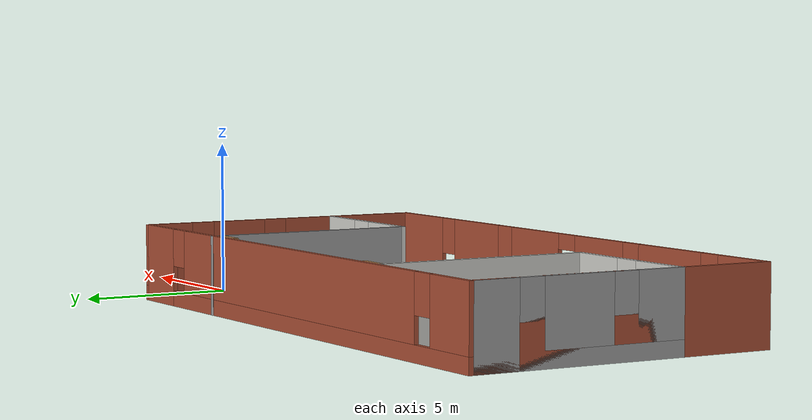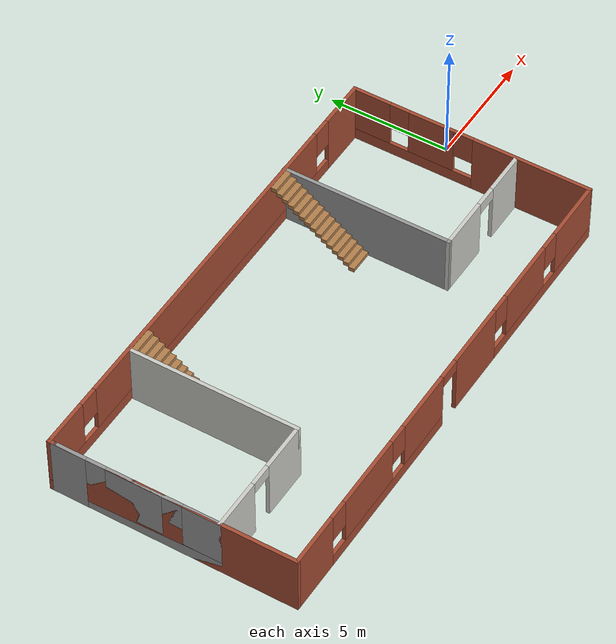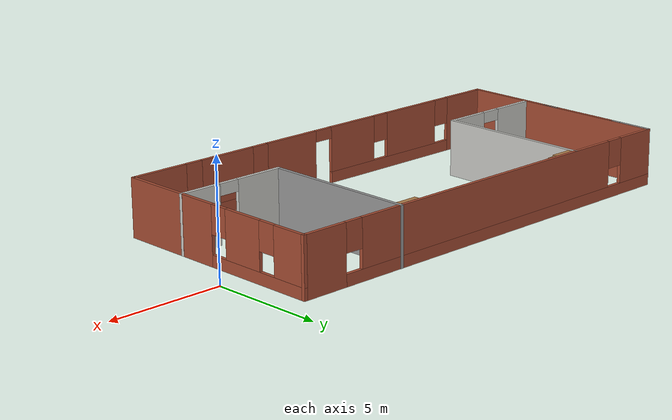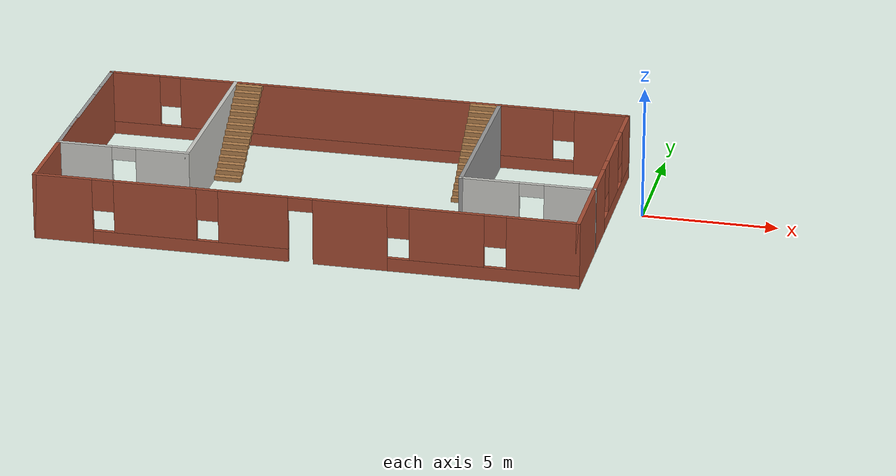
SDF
<?xml version='1.0'?>
<sdf version='1.6'>
  <model name='building01'>
    <pose frame=''>-11.0893 -1.63363 0 0 -0 0</pose>
    <link name='Stairs_0'>
      <visual name='Stairs_0_Visual_0'>
        <pose frame=''>-4.49569 1.4753 0.083 0 -0 -3.14159</pose>
        <geometry>
          <box>
            <size>1 0.233333 0.166</size>
          </box>
        </geometry>
        <material>
          <script>
            <uri>file://media/materials/scripts/gazebo.material</uri>
            <name>Gazebo/Wood</name>
          </script>
          <ambient>0.760784 0.662745 0.627451 1</ambient>
        </material>
        <meta>
          <layer>0</layer>
        </meta>
      </visual>
      <collision name='Stairs_0_Collision_0'>
        <geometry>
          <box>
            <size>1 0.233333 0.166</size>
          </box>
        </geometry>
        <pose frame=''>-4.49569 1.4753 0.083 0 -0 -3.14159</pose>
      </collision>
      <visual name='Stairs_0_Visual_1'>
        <pose frame=''>-4.49569 1.70863 0.249 0 -0 -3.14159</pose>
        <geometry>
          <box>
            <size>1 0.233333 0.166</size>
          </box>
        </geometry>
        <material>
          <script>
            <uri>file://media/materials/scripts/gazebo.material</uri>
            <name>Gazebo/Wood</name>
          </script>
          <ambient>0.760784 0.662745 0.627451 1</ambient>
        </material>
        <meta>
          <layer>0</layer>
        </meta>
      </visual>
      <collision name='Stairs_0_Collision_1'>
        <geometry>
          <box>
            <size>1 0.233333 0.166</size>
          </box>
        </geometry>
        <pose frame=''>-4.49569 1.70863 0.249 0 -0 -3.14159</pose>
      </collision>
      <visual name='Stairs_0_Visual_2'>
        <pose frame=''>-4.49569 1.94196 0.415 0 -0 -3.14159</pose>
        <geometry>
          <box>
            <size>1 0.233333 0.166</size>
          </box>
        </geometry>
        <material>
          <script>
            <uri>file://media/materials/scripts/gazebo.material</uri>
            <name>Gazebo/Wood</name>
          </script>
          <ambient>0.760784 0.662745 0.627451 1</ambient>
        </material>
        <meta>
          <layer>0</layer>
        </meta>
      </visual>
      <collision name='Stairs_0_Collision_2'>
        <geometry>
          <box>
            <size>1 0.233333 0.166</size>
          </box>
        </geometry>
        <pose frame=''>-4.49569 1.94196 0.415 0 -0 -3.14159</pose>
      </collision>
      <visual name='Stairs_0_Visual_3'>
        <pose frame=''>-4.49569 2.1753 0.581 0 -0 -3.14159</pose>
        <geometry>
          <box>
            <size>1 0.233333 0.166</size>
          </box>
        </geometry>
        <material>
          <script>
            <uri>file://media/materials/scripts/gazebo.material</uri>
            <name>Gazebo/Wood</name>
          </script>
          <ambient>0.760784 0.662745 0.627451 1</ambient>
        </material>
        <meta>
          <layer>0</layer>
        </meta>
      </visual>
      <collision name='Stairs_0_Collision_3'>
        <geometry>
          <box>
            <size>1 0.233333 0.166</size>
          </box>
        </geometry>
        <pose frame=''>-4.49569 2.1753 0.581 0 -0 -3.14159</pose>
      </collision>
      <visual name='Stairs_0_Visual_4'>
        <pose frame=''>-4.49569 2.40863 0.747 0 -0 -3.14159</pose>
        <geometry>
          <box>
            <size>1 0.233333 0.166</size>
          </box>
        </geometry>
        <material>
          <script>
            <uri>file://media/materials/scripts/gazebo.material</uri>
            <name>Gazebo/Wood</name>
          </script>
          <ambient>0.760784 0.662745 0.627451 1</ambient>
        </material>
        <meta>
          <layer>0</layer>
        </meta>
      </visual>
      <collision name='Stairs_0_Collision_4'>
        <geometry>
          <box>
            <size>1 0.233333 0.166</size>
          </box>
        </geometry>
        <pose frame=''>-4.49569 2.40863 0.747 0 -0 -3.14159</pose>
      </collision>
      <visual name='Stairs_0_Visual_5'>
        <pose frame=''>-4.49569 2.64196 0.913 0 -0 -3.14159</pose>
        <geometry>
          <box>
            <size>1 0.233333 0.166</size>
          </box>
        </geometry>
        <material>
          <script>
            <uri>file://media/materials/scripts/gazebo.material</uri>
            <name>Gazebo/Wood</name>
          </script>
          <ambient>0.760784 0.662745 0.627451 1</ambient>
        </material>
        <meta>
          <layer>0</layer>
        </meta>
      </visual>
      <collision name='Stairs_0_Collision_5'>
        <geometry>
          <box>
            <size>1 0.233333 0.166</size>
          </box>
        </geometry>
        <pose frame=''>-4.49569 2.64196 0.913 0 -0 -3.14159</pose>
      </collision>
      <visual name='Stairs_0_Visual_6'>
        <pose frame=''>-4.49569 2.87529 1.079 0 -0 -3.14159</pose>
        <geometry>
          <box>
            <size>1 0.233333 0.166</size>
          </box>
        </geometry>
        <material>
          <script>
            <uri>file://media/materials/scripts/gazebo.material</uri>
            <name>Gazebo/Wood</name>
          </script>
          <ambient>0.760784 0.662745 0.627451 1</ambient>
        </material>
        <meta>
          <layer>0</layer>
        </meta>
      </visual>
      <collision name='Stairs_0_Collision_6'>
        <geometry>
          <box>
            <size>1 0.233333 0.166</size>
          </box>
        </geometry>
        <pose frame=''>-4.49569 2.87529 1.079 0 -0 -3.14159</pose>
      </collision>
      <visual name='Stairs_0_Visual_7'>
        <pose frame=''>-4.49569 3.10863 1.245 0 -0 -3.14159</pose>
        <geometry>
          <box>
            <size>1 0.233333 0.166</size>
          </box>
        </geometry>
        <material>
          <script>
            <uri>file://media/materials/scripts/gazebo.material</uri>
            <name>Gazebo/Wood</name>
          </script>
          <ambient>0.760784 0.662745 0.627451 1</ambient>
        </material>
        <meta>
          <layer>0</layer>
        </meta>
      </visual>
      <collision name='Stairs_0_Collision_7'>
        <geometry>
          <box>
            <size>1 0.233333 0.166</size>
          </box>
        </geometry>
        <pose frame=''>-4.49569 3.10863 1.245 0 -0 -3.14159</pose>
      </collision>
      <visual name='Stairs_0_Visual_8'>
        <pose frame=''>-4.49569 3.34196 1.411 0 -0 -3.14159</pose>
        <geometry>
          <box>
            <size>1 0.233333 0.166</size>
          </box>
        </geometry>
        <material>
          <script>
            <uri>file://media/materials/scripts/gazebo.material</uri>
            <name>Gazebo/Wood</name>
          </script>
          <ambient>0.760784 0.662745 0.627451 1</ambient>
        </material>
        <meta>
          <layer>0</layer>
        </meta>
      </visual>
      <collision name='Stairs_0_Collision_8'>
        <geometry>
          <box>
            <size>1 0.233333 0.166</size>
          </box>
        </geometry>
        <pose frame=''>-4.49569 3.34196 1.411 0 -0 -3.14159</pose>
      </collision>
      <visual name='Stairs_0_Visual_9'>
        <pose frame=''>-4.49569 3.5753 1.577 0 -0 -3.14159</pose>
        <geometry>
          <box>
            <size>1 0.233333 0.166</size>
          </box>
        </geometry>
        <material>
          <script>
            <uri>file://media/materials/scripts/gazebo.material</uri>
            <name>Gazebo/Wood</name>
          </script>
          <ambient>0.760784 0.662745 0.627451 1</ambient>
        </material>
        <meta>
          <layer>0</layer>
        </meta>
      </visual>
      <collision name='Stairs_0_Collision_9'>
        <geometry>
          <box>
            <size>1 0.233333 0.166</size>
          </box>
        </geometry>
        <pose frame=''>-4.49569 3.5753 1.577 0 -0 -3.14159</pose>
      </collision>
      <visual name='Stairs_0_Visual_10'>
        <pose frame=''>-4.49569 3.80863 1.743 0 -0 -3.14159</pose>
        <geometry>
          <box>
            <size>1 0.233333 0.166</size>
          </box>
        </geometry>
        <material>
          <script>
            <uri>file://media/materials/scripts/gazebo.material</uri>
            <name>Gazebo/Wood</name>
          </script>
          <ambient>0.760784 0.662745 0.627451 1</ambient>
        </material>
        <meta>
          <layer>0</layer>
        </meta>
      </visual>
      <collision name='Stairs_0_Collision_10'>
        <geometry>
          <box>
            <size>1 0.233333 0.166</size>
          </box>
        </geometry>
        <pose frame=''>-4.49569 3.80863 1.743 0 -0 -3.14159</pose>
      </collision>
      <visual name='Stairs_0_Visual_11'>
        <pose frame=''>-4.49569 4.04196 1.909 0 -0 -3.14159</pose>
        <geometry>
          <box>
            <size>1 0.233333 0.166</size>
          </box>
        </geometry>
        <material>
          <script>
            <uri>file://media/materials/scripts/gazebo.material</uri>
            <name>Gazebo/Wood</name>
          </script>
          <ambient>0.760784 0.662745 0.627451 1</ambient>
        </material>
        <meta>
          <layer>0</layer>
        </meta>
      </visual>
      <collision name='Stairs_0_Collision_11'>
        <geometry>
          <box>
            <size>1 0.233333 0.166</size>
          </box>
        </geometry>
        <pose frame=''>-4.49569 4.04196 1.909 0 -0 -3.14159</pose>
      </collision>
      <visual name='Stairs_0_Visual_12'>
        <pose frame=''>-4.49569 4.27529 2.075 0 -0 -3.14159</pose>
        <geometry>
          <box>
            <size>1 0.233333 0.166</size>
          </box>
        </geometry>
        <material>
          <script>
            <uri>file://media/materials/scripts/gazebo.material</uri>
            <name>Gazebo/Wood</name>
          </script>
          <ambient>0.760784 0.662745 0.627451 1</ambient>
        </material>
        <meta>
          <layer>0</layer>
        </meta>
      </visual>
      <collision name='Stairs_0_Collision_12'>
        <geometry>
          <box>
            <size>1 0.233333 0.166</size>
          </box>
        </geometry>
        <pose frame=''>-4.49569 4.27529 2.075 0 -0 -3.14159</pose>
      </collision>
      <visual name='Stairs_0_Visual_13'>
        <pose frame=''>-4.49569 4.50863 2.241 0 -0 -3.14159</pose>
        <geometry>
          <box>
            <size>1 0.233333 0.166</size>
          </box>
        </geometry>
        <material>
          <script>
            <uri>file://media/materials/scripts/gazebo.material</uri>
            <name>Gazebo/Wood</name>
          </script>
          <ambient>0.760784 0.662745 0.627451 1</ambient>
        </material>
        <meta>
          <layer>0</layer>
        </meta>
      </visual>
      <collision name='Stairs_0_Collision_13'>
        <geometry>
          <box>
            <size>1 0.233333 0.166</size>
          </box>
        </geometry>
        <pose frame=''>-4.49569 4.50863 2.241 0 -0 -3.14159</pose>
      </collision>
      <visual name='Stairs_0_Visual_14'>
        <pose frame=''>-4.49569 4.74196 2.407 0 -0 -3.14159</pose>
        <geometry>
          <box>
            <size>1 0.233333 0.166</size>
          </box>
        </geometry>
        <material>
          <script>
            <uri>file://media/materials/scripts/gazebo.material</uri>
            <name>Gazebo/Wood</name>
          </script>
          <ambient>0.760784 0.662745 0.627451 1</ambient>
        </material>
        <meta>
          <layer>0</layer>
        </meta>
      </visual>
      <collision name='Stairs_0_Collision_14'>
        <geometry>
          <box>
            <size>1 0.233333 0.166</size>
          </box>
        </geometry>
        <pose frame=''>-4.49569 4.74196 2.407 0 -0 -3.14159</pose>
      </collision>
    </link>
    <link name='Stairs_1'>
      <visual name='Stairs_1_Visual_0'>
        <pose frame=''>4.50728 1.45825 0.083333 0 -0 -3.14159</pose>
        <geometry>
          <box>
            <size>1 0.233333 0.166667</size>
          </box>
        </geometry>
        <material>
          <script>
            <uri>file://media/materials/scripts/gazebo.material</uri>
            <name>Gazebo/Wood</name>
          </script>
          <ambient>1 1 1 1</ambient>
        </material>
        <meta>
          <layer>0</layer>
        </meta>
      </visual>
      <collision name='Stairs_1_Collision_0'>
        <geometry>
          <box>
            <size>1 0.233333 0.166667</size>
          </box>
        </geometry>
        <pose frame=''>4.50728 1.45825 0.083333 0 -0 -3.14159</pose>
      </collision>
      <visual name='Stairs_1_Visual_1'>
        <pose frame=''>4.50728 1.69158 0.25 0 -0 -3.14159</pose>
        <geometry>
          <box>
            <size>1 0.233333 0.166667</size>
          </box>
        </geometry>
        <material>
          <script>
            <uri>file://media/materials/scripts/gazebo.material</uri>
            <name>Gazebo/Wood</name>
          </script>
          <ambient>1 1 1 1</ambient>
        </material>
        <meta>
          <layer>0</layer>
        </meta>
      </visual>
      <collision name='Stairs_1_Collision_1'>
        <geometry>
          <box>
            <size>1 0.233333 0.166667</size>
          </box>
        </geometry>
        <pose frame=''>4.50728 1.69158 0.25 0 -0 -3.14159</pose>
      </collision>
      <visual name='Stairs_1_Visual_2'>
        <pose frame=''>4.50728 1.92491 0.416667 0 -0 -3.14159</pose>
        <geometry>
          <box>
            <size>1 0.233333 0.166667</size>
          </box>
        </geometry>
        <material>
          <script>
            <uri>file://media/materials/scripts/gazebo.material</uri>
            <name>Gazebo/Wood</name>
          </script>
          <ambient>1 1 1 1</ambient>
        </material>
        <meta>
          <layer>0</layer>
        </meta>
      </visual>
      <collision name='Stairs_1_Collision_2'>
        <geometry>
          <box>
            <size>1 0.233333 0.166667</size>
          </box>
        </geometry>
        <pose frame=''>4.50728 1.92491 0.416667 0 -0 -3.14159</pose>
      </collision>
      <visual name='Stairs_1_Visual_3'>
        <pose frame=''>4.50728 2.15825 0.583333 0 -0 -3.14159</pose>
        <geometry>
          <box>
            <size>1 0.233333 0.166667</size>
          </box>
        </geometry>
        <material>
          <script>
            <uri>file://media/materials/scripts/gazebo.material</uri>
            <name>Gazebo/Wood</name>
          </script>
          <ambient>1 1 1 1</ambient>
        </material>
        <meta>
          <layer>0</layer>
        </meta>
      </visual>
      <collision name='Stairs_1_Collision_3'>
        <geometry>
          <box>
            <size>1 0.233333 0.166667</size>
          </box>
        </geometry>
        <pose frame=''>4.50728 2.15825 0.583333 0 -0 -3.14159</pose>
      </collision>
      <visual name='Stairs_1_Visual_4'>
        <pose frame=''>4.50728 2.39158 0.75 0 -0 -3.14159</pose>
        <geometry>
          <box>
            <size>1 0.233333 0.166667</size>
          </box>
        </geometry>
        <material>
          <script>
            <uri>file://media/materials/scripts/gazebo.material</uri>
            <name>Gazebo/Wood</name>
          </script>
          <ambient>1 1 1 1</ambient>
        </material>
        <meta>
          <layer>0</layer>
        </meta>
      </visual>
      <collision name='Stairs_1_Collision_4'>
        <geometry>
          <box>
            <size>1 0.233333 0.166667</size>
          </box>
        </geometry>
        <pose frame=''>4.50728 2.39158 0.75 0 -0 -3.14159</pose>
      </collision>
      <visual name='Stairs_1_Visual_5'>
        <pose frame=''>4.50728 2.62491 0.916667 0 -0 -3.14159</pose>
        <geometry>
          <box>
            <size>1 0.233333 0.166667</size>
          </box>
        </geometry>
        <material>
          <script>
            <uri>file://media/materials/scripts/gazebo.material</uri>
            <name>Gazebo/Wood</name>
          </script>
          <ambient>1 1 1 1</ambient>
        </material>
        <meta>
          <layer>0</layer>
        </meta>
      </visual>
      <collision name='Stairs_1_Collision_5'>
        <geometry>
          <box>
            <size>1 0.233333 0.166667</size>
          </box>
        </geometry>
        <pose frame=''>4.50728 2.62491 0.916667 0 -0 -3.14159</pose>
      </collision>
      <visual name='Stairs_1_Visual_6'>
        <pose frame=''>4.50728 2.85825 1.08333 0 -0 -3.14159</pose>
        <geometry>
          <box>
            <size>1 0.233333 0.166667</size>
          </box>
        </geometry>
        <material>
          <script>
            <uri>file://media/materials/scripts/gazebo.material</uri>
            <name>Gazebo/Wood</name>
          </script>
          <ambient>1 1 1 1</ambient>
        </material>
        <meta>
          <layer>0</layer>
        </meta>
      </visual>
      <collision name='Stairs_1_Collision_6'>
        <geometry>
          <box>
            <size>1 0.233333 0.166667</size>
          </box>
        </geometry>
        <pose frame=''>4.50728 2.85825 1.08333 0 -0 -3.14159</pose>
      </collision>
      <visual name='Stairs_1_Visual_7'>
        <pose frame=''>4.50728 3.09158 1.25 0 -0 -3.14159</pose>
        <geometry>
          <box>
            <size>1 0.233333 0.166667</size>
          </box>
        </geometry>
        <material>
          <script>
            <uri>file://media/materials/scripts/gazebo.material</uri>
            <name>Gazebo/Wood</name>
          </script>
          <ambient>1 1 1 1</ambient>
        </material>
        <meta>
          <layer>0</layer>
        </meta>
      </visual>
      <collision name='Stairs_1_Collision_7'>
        <geometry>
          <box>
            <size>1 0.233333 0.166667</size>
          </box>
        </geometry>
        <pose frame=''>4.50728 3.09158 1.25 0 -0 -3.14159</pose>
      </collision>
      <visual name='Stairs_1_Visual_8'>
        <pose frame=''>4.50728 3.32491 1.41667 0 -0 -3.14159</pose>
        <geometry>
          <box>
            <size>1 0.233333 0.166667</size>
          </box>
        </geometry>
        <material>
          <script>
            <uri>file://media/materials/scripts/gazebo.material</uri>
            <name>Gazebo/Wood</name>
          </script>
          <ambient>1 1 1 1</ambient>
        </material>
        <meta>
          <layer>0</layer>
        </meta>
      </visual>
      <collision name='Stairs_1_Collision_8'>
        <geometry>
          <box>
            <size>1 0.233333 0.166667</size>
          </box>
        </geometry>
        <pose frame=''>4.50728 3.32491 1.41667 0 -0 -3.14159</pose>
      </collision>
      <visual name='Stairs_1_Visual_9'>
        <pose frame=''>4.50728 3.55825 1.58333 0 -0 -3.14159</pose>
        <geometry>
          <box>
            <size>1 0.233333 0.166667</size>
          </box>
        </geometry>
        <material>
          <script>
            <uri>file://media/materials/scripts/gazebo.material</uri>
            <name>Gazebo/Wood</name>
          </script>
          <ambient>1 1 1 1</ambient>
        </material>
        <meta>
          <layer>0</layer>
        </meta>
      </visual>
      <collision name='Stairs_1_Collision_9'>
        <geometry>
          <box>
            <size>1 0.233333 0.166667</size>
          </box>
        </geometry>
        <pose frame=''>4.50728 3.55825 1.58333 0 -0 -3.14159</pose>
      </collision>
      <visual name='Stairs_1_Visual_10'>
        <pose frame=''>4.50728 3.79158 1.75 0 -0 -3.14159</pose>
        <geometry>
          <box>
            <size>1 0.233333 0.166667</size>
          </box>
        </geometry>
        <material>
          <script>
            <uri>file://media/materials/scripts/gazebo.material</uri>
            <name>Gazebo/Wood</name>
          </script>
          <ambient>1 1 1 1</ambient>
        </material>
        <meta>
          <layer>0</layer>
        </meta>
      </visual>
      <collision name='Stairs_1_Collision_10'>
        <geometry>
          <box>
            <size>1 0.233333 0.166667</size>
          </box>
        </geometry>
        <pose frame=''>4.50728 3.79158 1.75 0 -0 -3.14159</pose>
      </collision>
      <visual name='Stairs_1_Visual_11'>
        <pose frame=''>4.50728 4.02491 1.91667 0 -0 -3.14159</pose>
        <geometry>
          <box>
            <size>1 0.233333 0.166667</size>
          </box>
        </geometry>
        <material>
          <script>
            <uri>file://media/materials/scripts/gazebo.material</uri>
            <name>Gazebo/Wood</name>
          </script>
          <ambient>1 1 1 1</ambient>
        </material>
        <meta>
          <layer>0</layer>
        </meta>
      </visual>
      <collision name='Stairs_1_Collision_11'>
        <geometry>
          <box>
            <size>1 0.233333 0.166667</size>
          </box>
        </geometry>
        <pose frame=''>4.50728 4.02491 1.91667 0 -0 -3.14159</pose>
      </collision>
      <visual name='Stairs_1_Visual_12'>
        <pose frame=''>4.50728 4.25825 2.08333 0 -0 -3.14159</pose>
        <geometry>
          <box>
            <size>1 0.233333 0.166667</size>
          </box>
        </geometry>
        <material>
          <script>
            <uri>file://media/materials/scripts/gazebo.material</uri>
            <name>Gazebo/Wood</name>
          </script>
          <ambient>1 1 1 1</ambient>
        </material>
        <meta>
          <layer>0</layer>
        </meta>
      </visual>
      <collision name='Stairs_1_Collision_12'>
        <geometry>
          <box>
            <size>1 0.233333 0.166667</size>
          </box>
        </geometry>
        <pose frame=''>4.50728 4.25825 2.08333 0 -0 -3.14159</pose>
      </collision>
      <visual name='Stairs_1_Visual_13'>
        <pose frame=''>4.50728 4.49158 2.25 0 -0 -3.14159</pose>
        <geometry>
          <box>
            <size>1 0.233333 0.166667</size>
          </box>
        </geometry>
        <material>
          <script>
            <uri>file://media/materials/scripts/gazebo.material</uri>
            <name>Gazebo/Wood</name>
          </script>
          <ambient>1 1 1 1</ambient>
        </material>
        <meta>
          <layer>0</layer>
        </meta>
      </visual>
      <collision name='Stairs_1_Collision_13'>
        <geometry>
          <box>
            <size>1 0.233333 0.166667</size>
          </box>
        </geometry>
        <pose frame=''>4.50728 4.49158 2.25 0 -0 -3.14159</pose>
      </collision>
      <visual name='Stairs_1_Visual_14'>
        <pose frame=''>4.50728 4.72491 2.41667 0 -0 -3.14159</pose>
        <geometry>
          <box>
            <size>1 0.233333 0.166667</size>
          </box>
        </geometry>
        <material>
          <script>
            <uri>file://media/materials/scripts/gazebo.material</uri>
            <name>Gazebo/Wood</name>
          </script>
          <ambient>1 1 1 1</ambient>
        </material>
        <meta>
          <layer>0</layer>
        </meta>
      </visual>
      <collision name='Stairs_1_Collision_14'>
        <geometry>
          <box>
            <size>1 0.233333 0.166667</size>
          </box>
        </geometry>
        <pose frame=''>4.50728 4.72491 2.41667 0 -0 -3.14159</pose>
      </collision>
    </link>
    <link name='Wall_16'>
      <pose frame=''>7.50105 -1.91931 0 0 -0 3.14159</pose>
      <visual name='Wall_16_Visual_0'>
        <pose frame=''>-1.55703 0 1.25 0 -0 0</pose>
        <geometry>
          <box>
            <size>1.88594 0.15 2.5</size>
          </box>
        </geometry>
        <material>
          <script>
            <uri>file://media/materials/scripts/gazebo.material</uri>
            <name>Gazebo/CeilingTiled</name>
          </script>
          <ambient>1 1 1 1</ambient>
        </material>
        <meta>
          <layer>0</layer>
        </meta>
      </visual>
      <collision name='Wall_16_Collision_0'>
        <geometry>
          <box>
            <size>1.88594 0.15 2.5</size>
          </box>
        </geometry>
        <pose frame=''>-1.55703 0 1.25 0 -0 0</pose>
      </collision>
      <visual name='Wall_16_Visual_1'>
        <pose frame=''>1.39297 0 1.25 0 -0 0</pose>
        <geometry>
          <box>
            <size>2.21406 0.15 2.5</size>
          </box>
        </geometry>
        <material>
          <script>
            <uri>file://media/materials/scripts/gazebo.material</uri>
            <name>Gazebo/CeilingTiled</name>
          </script>
          <ambient>1 1 1 1</ambient>
        </material>
        <meta>
          <layer>0</layer>
        </meta>
      </visual>
      <collision name='Wall_16_Collision_1'>
        <geometry>
          <box>
            <size>2.21406 0.15 2.5</size>
          </box>
        </geometry>
        <pose frame=''>1.39297 0 1.25 0 -0 0</pose>
      </collision>
      <visual name='Wall_16_Visual_2'>
        <pose frame=''>-0.164063 0 2.25 0 -0 0</pose>
        <geometry>
          <box>
            <size>0.9 0.15 0.5</size>
          </box>
        </geometry>
        <material>
          <script>
            <uri>file://media/materials/scripts/gazebo.material</uri>
            <name>Gazebo/CeilingTiled</name>
          </script>
          <ambient>1 1 1 1</ambient>
        </material>
        <meta>
          <layer>0</layer>
        </meta>
      </visual>
      <collision name='Wall_16_Collision_2'>
        <geometry>
          <box>
            <size>0.9 0.15 0.5</size>
          </box>
        </geometry>
        <pose frame=''>-0.164063 0 2.25 0 -0 0</pose>
      </collision>
    </link>
    <link name='Wall_17'>
      <collision name='Wall_17_Collision'>
        <geometry>
          <box>
            <size>7 0.15 2.5</size>
          </box>
        </geometry>
        <pose frame=''>0 0 1.25 0 -0 0</pose>
      </collision>
      <visual name='Wall_17_Visual'>
        <pose frame=''>0 0 1.25 0 -0 0</pose>
        <geometry>
          <box>
            <size>7 0.15 2.5</size>
          </box>
        </geometry>
        <material>
          <script>
            <uri>file://media/materials/scripts/gazebo.material</uri>
            <name>Gazebo/Grey</name>
          </script>
          <ambient>1 1 1 1</ambient>
        </material>
        <meta>
          <layer>0</layer>
        </meta>
      </visual>
      <pose frame=''>5.07605 1.50569 0 0 -0 1.5708</pose>
    </link>
    <link name='Wall_3'>
      <collision name='Wall_3_Collision'>
        <geometry>
          <box>
            <size>10 0.15 2.5</size>
          </box>
        </geometry>
        <pose frame=''>0 0 1.25 0 -0 0</pose>
      </collision>
      <visual name='Wall_3_Visual'>
        <pose frame=''>0 0 1.25 0 -0 0</pose>
        <geometry>
          <box>
            <size>10 0.15 2.5</size>
          </box>
        </geometry>
        <material>
          <script>
            <uri>file://media/materials/scripts/gazebo.material</uri>
            <name>Gazebo/Bricks</name>
          </script>
          <ambient>1 1 1 1</ambient>
        </material>
        <meta>
          <layer>0</layer>
        </meta>
      </visual>
      <pose frame=''>-9.92605 -0.005693 0 0 0 -1.5708</pose>
    </link>
    <link name='Wall_4'>
      <pose frame=''>-0.001048 -4.93069 0 0 -0 0</pose>
      <visual name='Wall_4_Visual_0'>
        <pose frame=''>-8.8894 0 1.25 0 -0 0</pose>
        <geometry>
          <box>
            <size>2.22121 0.15 2.5</size>
          </box>
        </geometry>
        <material>
          <script>
            <uri>file://media/materials/scripts/gazebo.material</uri>
            <name>Gazebo/Bricks</name>
          </script>
          <ambient>1 1 1 1</ambient>
        </material>
        <meta>
          <layer>0</layer>
        </meta>
      </visual>
      <collision name='Wall_4_Collision_0'>
        <geometry>
          <box>
            <size>2.22121 0.15 2.5</size>
          </box>
        </geometry>
        <pose frame=''>-8.8894 0 1.25 0 -0 0</pose>
      </collision>
      <visual name='Wall_4_Visual_1'>
        <pose frame=''>1.70737 0 1.25 0 -0 0</pose>
        <geometry>
          <box>
            <size>2.7101 0.15 2.5</size>
          </box>
        </geometry>
        <material>
          <script>
            <uri>file://media/materials/scripts/gazebo.material</uri>
            <name>Gazebo/Bricks</name>
          </script>
          <ambient>1 1 1 1</ambient>
        </material>
        <meta>
          <layer>0</layer>
        </meta>
      </visual>
      <collision name='Wall_4_Collision_1'>
        <geometry>
          <box>
            <size>2.7101 0.15 2.5</size>
          </box>
        </geometry>
        <pose frame=''>1.70737 0 1.25 0 -0 0</pose>
      </collision>
      <visual name='Wall_4_Visual_2'>
        <pose frame=''>-4.16324 0 0.25 0 -0 0</pose>
        <geometry>
          <box>
            <size>7.23111 0.15 0.5</size>
          </box>
        </geometry>
        <material>
          <script>
            <uri>file://media/materials/scripts/gazebo.material</uri>
            <name>Gazebo/Bricks</name>
          </script>
          <ambient>1 1 1 1</ambient>
        </material>
        <meta>
          <layer>0</layer>
        </meta>
      </visual>
      <collision name='Wall_4_Collision_2'>
        <geometry>
          <box>
            <size>7.23111 0.15 0.5</size>
          </box>
        </geometry>
        <pose frame=''>-4.16324 0 0.25 0 -0 0</pose>
      </collision>
      <visual name='Wall_4_Visual_3'>
        <pose frame=''>6.53121 0 0.25 0 -0 0</pose>
        <geometry>
          <box>
            <size>6.93758 0.15 0.5</size>
          </box>
        </geometry>
        <material>
          <script>
            <uri>file://media/materials/scripts/gazebo.material</uri>
            <name>Gazebo/Bricks</name>
          </script>
          <ambient>1 1 1 1</ambient>
        </material>
        <meta>
          <layer>0</layer>
        </meta>
      </visual>
      <collision name='Wall_4_Collision_3'>
        <geometry>
          <box>
            <size>6.93758 0.15 0.5</size>
          </box>
        </geometry>
        <pose frame=''>6.53121 0 0.25 0 -0 0</pose>
      </collision>
      <visual name='Wall_4_Visual_4'>
        <pose frame=''>-5.44789 0 1.5 0 -0 0</pose>
        <geometry>
          <box>
            <size>3.06181 0.15 2</size>
          </box>
        </geometry>
        <material>
          <script>
            <uri>file://media/materials/scripts/gazebo.material</uri>
            <name>Gazebo/Bricks</name>
          </script>
          <ambient>1 1 1 1</ambient>
        </material>
        <meta>
          <layer>0</layer>
        </meta>
      </visual>
      <collision name='Wall_4_Collision_4'>
        <geometry>
          <box>
            <size>3.06181 0.15 2</size>
          </box>
        </geometry>
        <pose frame=''>-5.44789 0 1.5 0 -0 0</pose>
      </collision>
      <visual name='Wall_4_Visual_5'>
        <pose frame=''>-1.83233 0 1.5 0 -0 0</pose>
        <geometry>
          <box>
            <size>2.56931 0.15 2</size>
          </box>
        </geometry>
        <material>
          <script>
            <uri>file://media/materials/scripts/gazebo.material</uri>
            <name>Gazebo/Bricks</name>
          </script>
          <ambient>1 1 1 1</ambient>
        </material>
        <meta>
          <layer>0</layer>
        </meta>
      </visual>
      <collision name='Wall_4_Collision_5'>
        <geometry>
          <box>
            <size>2.56931 0.15 2</size>
          </box>
        </geometry>
        <pose frame=''>-1.83233 0 1.5 0 -0 0</pose>
      </collision>
      <visual name='Wall_4_Visual_6'>
        <pose frame=''>-1.83233 0 1.5 0 -0 0</pose>
        <geometry>
          <box>
            <size>2.56931 0.15 2</size>
          </box>
        </geometry>
        <material>
          <script>
            <uri>file://media/materials/scripts/gazebo.material</uri>
            <name>Gazebo/Bricks</name>
          </script>
          <ambient>1 1 1 1</ambient>
        </material>
        <meta>
          <layer>0</layer>
        </meta>
      </visual>
      <collision name='Wall_4_Collision_6'>
        <geometry>
          <box>
            <size>2.56931 0.15 2</size>
          </box>
        </geometry>
        <pose frame=''>-1.83233 0 1.5 0 -0 0</pose>
      </collision>
      <visual name='Wall_4_Visual_7'>
        <pose frame=''>5.2123 0 1.5 0 -0 0</pose>
        <geometry>
          <box>
            <size>2.69976 0.15 2</size>
          </box>
        </geometry>
        <material>
          <script>
            <uri>file://media/materials/scripts/gazebo.material</uri>
            <name>Gazebo/Bricks</name>
          </script>
          <ambient>1 1 1 1</ambient>
        </material>
        <meta>
          <layer>0</layer>
        </meta>
      </visual>
      <collision name='Wall_4_Collision_7'>
        <geometry>
          <box>
            <size>2.69976 0.15 2</size>
          </box>
        </geometry>
        <pose frame=''>5.2123 0 1.5 0 -0 0</pose>
      </collision>
      <visual name='Wall_4_Visual_8'>
        <pose frame=''>8.68109 0 1.5 0 -0 0</pose>
        <geometry>
          <box>
            <size>2.63782 0.15 2</size>
          </box>
        </geometry>
        <material>
          <script>
            <uri>file://media/materials/scripts/gazebo.material</uri>
            <name>Gazebo/Bricks</name>
          </script>
          <ambient>1 1 1 1</ambient>
        </material>
        <meta>
          <layer>0</layer>
        </meta>
      </visual>
      <collision name='Wall_4_Collision_8'>
        <geometry>
          <box>
            <size>2.63782 0.15 2</size>
          </box>
        </geometry>
        <pose frame=''>8.68109 0 1.5 0 -0 0</pose>
      </collision>
      <visual name='Wall_4_Visual_9'>
        <pose frame=''>-7.37879 0 1.9 0 -0 0</pose>
        <geometry>
          <box>
            <size>0.8 0.15 1.2</size>
          </box>
        </geometry>
        <material>
          <script>
            <uri>file://media/materials/scripts/gazebo.material</uri>
            <name>Gazebo/Bricks</name>
          </script>
          <ambient>1 1 1 1</ambient>
        </material>
        <meta>
          <layer>0</layer>
        </meta>
      </visual>
      <collision name='Wall_4_Collision_9'>
        <geometry>
          <box>
            <size>0.8 0.15 1.2</size>
          </box>
        </geometry>
        <pose frame=''>-7.37879 0 1.9 0 -0 0</pose>
      </collision>
      <visual name='Wall_4_Visual_10'>
        <pose frame=''>3.46242 0 1.9 0 -0 0</pose>
        <geometry>
          <box>
            <size>0.8 0.15 1.2</size>
          </box>
        </geometry>
        <material>
          <script>
            <uri>file://media/materials/scripts/gazebo.material</uri>
            <name>Gazebo/Bricks</name>
          </script>
          <ambient>1 1 1 1</ambient>
        </material>
        <meta>
          <layer>0</layer>
        </meta>
      </visual>
      <collision name='Wall_4_Collision_10'>
        <geometry>
          <box>
            <size>0.8 0.15 1.2</size>
          </box>
        </geometry>
        <pose frame=''>3.46242 0 1.9 0 -0 0</pose>
      </collision>
      <visual name='Wall_4_Visual_11'>
        <pose frame=''>-3.51699 0 1.9 0 -0 0</pose>
        <geometry>
          <box>
            <size>0.8 0.15 1.2</size>
          </box>
        </geometry>
        <material>
          <script>
            <uri>file://media/materials/scripts/gazebo.material</uri>
            <name>Gazebo/Bricks</name>
          </script>
          <ambient>1 1 1 1</ambient>
        </material>
        <meta>
          <layer>0</layer>
        </meta>
      </visual>
      <collision name='Wall_4_Collision_11'>
        <geometry>
          <box>
            <size>0.8 0.15 1.2</size>
          </box>
        </geometry>
        <pose frame=''>-3.51699 0 1.9 0 -0 0</pose>
      </collision>
      <visual name='Wall_4_Visual_12'>
        <pose frame=''>6.96218 0 1.9 0 -0 0</pose>
        <geometry>
          <box>
            <size>0.8 0.15 1.2</size>
          </box>
        </geometry>
        <material>
          <script>
            <uri>file://media/materials/scripts/gazebo.material</uri>
            <name>Gazebo/Bricks</name>
          </script>
          <ambient>1 1 1 1</ambient>
        </material>
        <meta>
          <layer>0</layer>
        </meta>
      </visual>
      <collision name='Wall_4_Collision_12'>
        <geometry>
          <box>
            <size>0.8 0.15 1.2</size>
          </box>
        </geometry>
        <pose frame=''>6.96218 0 1.9 0 -0 0</pose>
      </collision>
      <visual name='Wall_4_Visual_13'>
        <pose frame=''>-0.09768 0 2.25 0 -0 0</pose>
        <geometry>
          <box>
            <size>0.9 0.15 0.5</size>
          </box>
        </geometry>
        <material>
          <script>
            <uri>file://media/materials/scripts/gazebo.material</uri>
            <name>Gazebo/Bricks</name>
          </script>
          <ambient>1 1 1 1</ambient>
        </material>
        <meta>
          <layer>0</layer>
        </meta>
      </visual>
      <collision name='Wall_4_Collision_13'>
        <geometry>
          <box>
            <size>0.9 0.15 0.5</size>
          </box>
        </geometry>
        <pose frame=''>-0.09768 0 2.25 0 -0 0</pose>
      </collision>
      <visual name='Wall_4_Visual_14'>
        <pose frame=''>-0.09768 0 2.25 0 -0 0</pose>
        <geometry>
          <box>
            <size>0.9 0.15 0.5</size>
          </box>
        </geometry>
        <material>
          <script>
            <uri>file://media/materials/scripts/gazebo.material</uri>
            <name>Gazebo/Bricks</name>
          </script>
          <ambient>1 1 1 1</ambient>
        </material>
        <meta>
          <layer>0</layer>
        </meta>
      </visual>
      <collision name='Wall_4_Collision_14'>
        <geometry>
          <box>
            <size>0.9 0.15 0.5</size>
          </box>
        </geometry>
        <pose frame=''>-0.09768 0 2.25 0 -0 0</pose>
      </collision>
    </link>
    <link name='Wall_5'>
      <pose frame=''>9.92395 -0.005693 0 0 -0 1.5708</pose>
      <visual name='Wall_5_Visual_0'>
        <pose frame=''>-2.55931 0 1.25 0 -0 0</pose>
        <geometry>
          <box>
            <size>4.88137 0.15 2.5</size>
          </box>
        </geometry>
        <material>
          <script>
            <uri>file://media/materials/scripts/gazebo.material</uri>
            <name>Gazebo/Bricks</name>
          </script>
          <ambient>1 1 1 1</ambient>
        </material>
        <meta>
          <layer>0</layer>
        </meta>
      </visual>
      <collision name='Wall_5_Collision_0'>
        <geometry>
          <box>
            <size>4.88137 0.15 2.5</size>
          </box>
        </geometry>
        <pose frame=''>-2.55931 0 1.25 0 -0 0</pose>
      </collision>
      <visual name='Wall_5_Visual_1'>
        <pose frame=''>2.44069 0 0.25 0 -0 0</pose>
        <geometry>
          <box>
            <size>5.11863 0.15 0.5</size>
          </box>
        </geometry>
        <material>
          <script>
            <uri>file://media/materials/scripts/gazebo.material</uri>
            <name>Gazebo/Bricks</name>
          </script>
          <ambient>1 1 1 1</ambient>
        </material>
        <meta>
          <layer>0</layer>
        </meta>
      </visual>
      <collision name='Wall_5_Collision_1'>
        <geometry>
          <box>
            <size>5.11863 0.15 0.5</size>
          </box>
        </geometry>
        <pose frame=''>2.44069 0 0.25 0 -0 0</pose>
      </collision>
      <visual name='Wall_5_Visual_2'>
        <pose frame=''>1.62898 0 1.5 0 -0 0</pose>
        <geometry>
          <box>
            <size>1.89522 0.15 2</size>
          </box>
        </geometry>
        <material>
          <script>
            <uri>file://media/materials/scripts/gazebo.material</uri>
            <name>Gazebo/Bricks</name>
          </script>
          <ambient>1 1 1 1</ambient>
        </material>
        <meta>
          <layer>0</layer>
        </meta>
      </visual>
      <collision name='Wall_5_Collision_2'>
        <geometry>
          <box>
            <size>1.89522 0.15 2</size>
          </box>
        </geometry>
        <pose frame=''>1.62898 0 1.5 0 -0 0</pose>
      </collision>
      <visual name='Wall_5_Visual_3'>
        <pose frame=''>4.1883 0 1.5 0 -0 0</pose>
        <geometry>
          <box>
            <size>1.62341 0.15 2</size>
          </box>
        </geometry>
        <material>
          <script>
            <uri>file://media/materials/scripts/gazebo.material</uri>
            <name>Gazebo/Bricks</name>
          </script>
          <ambient>1 1 1 1</ambient>
        </material>
        <meta>
          <layer>0</layer>
        </meta>
      </visual>
      <collision name='Wall_5_Collision_3'>
        <geometry>
          <box>
            <size>1.62341 0.15 2</size>
          </box>
        </geometry>
        <pose frame=''>4.1883 0 1.5 0 -0 0</pose>
      </collision>
      <visual name='Wall_5_Visual_4'>
        <pose frame=''>0.281374 0 1.9 0 -0 0</pose>
        <geometry>
          <box>
            <size>0.8 0.15 1.2</size>
          </box>
        </geometry>
        <material>
          <script>
            <uri>file://media/materials/scripts/gazebo.material</uri>
            <name>Gazebo/Bricks</name>
          </script>
          <ambient>1 1 1 1</ambient>
        </material>
        <meta>
          <layer>0</layer>
        </meta>
      </visual>
      <collision name='Wall_5_Collision_4'>
        <geometry>
          <box>
            <size>0.8 0.15 1.2</size>
          </box>
        </geometry>
        <pose frame=''>0.281374 0 1.9 0 -0 0</pose>
      </collision>
      <visual name='Wall_5_Visual_5'>
        <pose frame=''>2.97659 0 1.9 0 -0 0</pose>
        <geometry>
          <box>
            <size>0.8 0.15 1.2</size>
          </box>
        </geometry>
        <material>
          <script>
            <uri>file://media/materials/scripts/gazebo.material</uri>
            <name>Gazebo/Bricks</name>
          </script>
          <ambient>1 1 1 1</ambient>
        </material>
        <meta>
          <layer>0</layer>
        </meta>
      </visual>
      <collision name='Wall_5_Collision_5'>
        <geometry>
          <box>
            <size>0.8 0.15 1.2</size>
          </box>
        </geometry>
        <pose frame=''>2.97659 0 1.9 0 -0 0</pose>
      </collision>
    </link>
    <link name='Wall_6'>
      <pose frame=''>-0.001048 4.91931 0 0 -0 3.14159</pose>
      <visual name='Wall_6_Visual_0'>
        <pose frame=''>-8.96268 0 1.25 0 -0 0</pose>
        <geometry>
          <box>
            <size>2.07464 0.15 2.5</size>
          </box>
        </geometry>
        <material>
          <script>
            <uri>file://media/materials/scripts/gazebo.material</uri>
            <name>Gazebo/Bricks</name>
          </script>
          <ambient>1 1 1 1</ambient>
        </material>
        <meta>
          <layer>0</layer>
        </meta>
      </visual>
      <collision name='Wall_6_Collision_0'>
        <geometry>
          <box>
            <size>2.07464 0.15 2.5</size>
          </box>
        </geometry>
        <pose frame=''>-8.96268 0 1.25 0 -0 0</pose>
      </collision>
      <visual name='Wall_6_Visual_1'>
        <pose frame=''>1.03732 0 0.25 0 -0 0</pose>
        <geometry>
          <box>
            <size>17.9254 0.15 0.5</size>
          </box>
        </geometry>
        <material>
          <script>
            <uri>file://media/materials/scripts/gazebo.material</uri>
            <name>Gazebo/Bricks</name>
          </script>
          <ambient>1 1 1 1</ambient>
        </material>
        <meta>
          <layer>0</layer>
        </meta>
      </visual>
      <collision name='Wall_6_Collision_1'>
        <geometry>
          <box>
            <size>17.9254 0.15 0.5</size>
          </box>
        </geometry>
        <pose frame=''>1.03732 0 0.25 0 -0 0</pose>
      </collision>
      <visual name='Wall_6_Visual_2'>
        <pose frame=''>0.047396 0 1.5 0 -0 0</pose>
        <geometry>
          <box>
            <size>14.3455 0.15 2</size>
          </box>
        </geometry>
        <material>
          <script>
            <uri>file://media/materials/scripts/gazebo.material</uri>
            <name>Gazebo/Bricks</name>
          </script>
          <ambient>1 1 1 1</ambient>
        </material>
        <meta>
          <layer>0</layer>
        </meta>
      </visual>
      <collision name='Wall_6_Collision_2'>
        <geometry>
          <box>
            <size>14.3455 0.15 2</size>
          </box>
        </geometry>
        <pose frame=''>0.047396 0 1.5 0 -0 0</pose>
      </collision>
      <visual name='Wall_6_Visual_3'>
        <pose frame=''>9.01008 0 1.5 0 -0 0</pose>
        <geometry>
          <box>
            <size>1.97985 0.15 2</size>
          </box>
        </geometry>
        <material>
          <script>
            <uri>file://media/materials/scripts/gazebo.material</uri>
            <name>Gazebo/Bricks</name>
          </script>
          <ambient>1 1 1 1</ambient>
        </material>
        <meta>
          <layer>0</layer>
        </meta>
      </visual>
      <collision name='Wall_6_Collision_3'>
        <geometry>
          <box>
            <size>1.97985 0.15 2</size>
          </box>
        </geometry>
        <pose frame=''>9.01008 0 1.5 0 -0 0</pose>
      </collision>
      <visual name='Wall_6_Visual_4'>
        <pose frame=''>-7.52536 0 1.9 0 -0 0</pose>
        <geometry>
          <box>
            <size>0.8 0.15 1.2</size>
          </box>
        </geometry>
        <material>
          <script>
            <uri>file://media/materials/scripts/gazebo.material</uri>
            <name>Gazebo/Bricks</name>
          </script>
          <ambient>1 1 1 1</ambient>
        </material>
        <meta>
          <layer>0</layer>
        </meta>
      </visual>
      <collision name='Wall_6_Collision_4'>
        <geometry>
          <box>
            <size>0.8 0.15 1.2</size>
          </box>
        </geometry>
        <pose frame=''>-7.52536 0 1.9 0 -0 0</pose>
      </collision>
      <visual name='Wall_6_Visual_5'>
        <pose frame=''>7.62015 0 1.9 0 -0 0</pose>
        <geometry>
          <box>
            <size>0.8 0.15 1.2</size>
          </box>
        </geometry>
        <material>
          <script>
            <uri>file://media/materials/scripts/gazebo.material</uri>
            <name>Gazebo/Bricks</name>
          </script>
          <ambient>1 1 1 1</ambient>
        </material>
        <meta>
          <layer>0</layer>
        </meta>
      </visual>
      <collision name='Wall_6_Collision_5'>
        <geometry>
          <box>
            <size>0.8 0.15 1.2</size>
          </box>
        </geometry>
        <pose frame=''>7.62015 0 1.9 0 -0 0</pose>
      </collision>
    </link>
    <link name='Wall_7'>
      <pose frame=''>-9.92605 1.49431 0 0 0 -1.5708</pose>
      <visual name='Wall_7_Visual_0'>
        <pose frame=''>-2.70841 0 1.25 0 -0 0</pose>
        <geometry>
          <box>
            <size>1.58318 0.15 2.5</size>
          </box>
        </geometry>
        <material>
          <script>
            <uri>file://media/materials/scripts/gazebo.material</uri>
            <name>Gazebo/Grey</name>
          </script>
          <ambient>1 1 1 1</ambient>
        </material>
        <meta>
          <layer>0</layer>
        </meta>
      </visual>
      <collision name='Wall_7_Collision_0'>
        <geometry>
          <box>
            <size>1.58318 0.15 2.5</size>
          </box>
        </geometry>
        <pose frame=''>-2.70841 0 1.25 0 -0 0</pose>
      </collision>
      <visual name='Wall_7_Visual_1'>
        <pose frame=''>0.79159 0 0.25 0 -0 0</pose>
        <geometry>
          <box>
            <size>5.41682 0.15 0.5</size>
          </box>
        </geometry>
        <material>
          <script>
            <uri>file://media/materials/scripts/gazebo.material</uri>
            <name>Gazebo/Grey</name>
          </script>
          <ambient>1 1 1 1</ambient>
        </material>
        <meta>
          <layer>0</layer>
        </meta>
      </visual>
      <collision name='Wall_7_Collision_1'>
        <geometry>
          <box>
            <size>5.41682 0.15 0.5</size>
          </box>
        </geometry>
        <pose frame=''>0.79159 0 0.25 0 -0 0</pose>
      </collision>
      <visual name='Wall_7_Visual_2'>
        <pose frame=''>0.011812 0 1.5 0 -0 0</pose>
        <geometry>
          <box>
            <size>2.25726 0.15 2</size>
          </box>
        </geometry>
        <material>
          <script>
            <uri>file://media/materials/scripts/gazebo.material</uri>
            <name>Gazebo/Grey</name>
          </script>
          <ambient>1 1 1 1</ambient>
        </material>
        <meta>
          <layer>0</layer>
        </meta>
      </visual>
      <collision name='Wall_7_Collision_2'>
        <geometry>
          <box>
            <size>2.25726 0.15 2</size>
          </box>
        </geometry>
        <pose frame=''>0.011812 0 1.5 0 -0 0</pose>
      </collision>
      <visual name='Wall_7_Visual_3'>
        <pose frame=''>2.72022 0 1.5 0 -0 0</pose>
        <geometry>
          <box>
            <size>1.55956 0.15 2</size>
          </box>
        </geometry>
        <material>
          <script>
            <uri>file://media/materials/scripts/gazebo.material</uri>
            <name>Gazebo/Grey</name>
          </script>
          <ambient>1 1 1 1</ambient>
        </material>
        <meta>
          <layer>0</layer>
        </meta>
      </visual>
      <collision name='Wall_7_Collision_3'>
        <geometry>
          <box>
            <size>1.55956 0.15 2</size>
          </box>
        </geometry>
        <pose frame=''>2.72022 0 1.5 0 -0 0</pose>
      </collision>
      <visual name='Wall_7_Visual_4'>
        <pose frame=''>-1.51682 0 1.9 0 -0 0</pose>
        <geometry>
          <box>
            <size>0.8 0.15 1.2</size>
          </box>
        </geometry>
        <material>
          <script>
            <uri>file://media/materials/scripts/gazebo.material</uri>
            <name>Gazebo/Grey</name>
          </script>
          <ambient>1 1 1 1</ambient>
        </material>
        <meta>
          <layer>0</layer>
        </meta>
      </visual>
      <collision name='Wall_7_Collision_4'>
        <geometry>
          <box>
            <size>0.8 0.15 1.2</size>
          </box>
        </geometry>
        <pose frame=''>-1.51682 0 1.9 0 -0 0</pose>
      </collision>
      <visual name='Wall_7_Visual_5'>
        <pose frame=''>1.54044 0 1.9 0 -0 0</pose>
        <geometry>
          <box>
            <size>0.8 0.15 1.2</size>
          </box>
        </geometry>
        <material>
          <script>
            <uri>file://media/materials/scripts/gazebo.material</uri>
            <name>Gazebo/Grey</name>
          </script>
          <ambient>1 1 1 1</ambient>
        </material>
        <meta>
          <layer>0</layer>
        </meta>
      </visual>
      <collision name='Wall_7_Collision_5'>
        <geometry>
          <box>
            <size>0.8 0.15 1.2</size>
          </box>
        </geometry>
        <pose frame=''>1.54044 0 1.9 0 -0 0</pose>
      </collision>
    </link>
    <link name='Wall_8'>
      <pose frame=''>-7.50105 -1.93069 0 0 -0 0</pose>
      <visual name='Wall_8_Visual_0'>
        <pose frame=''>-1.45462 0 1.25 0 -0 0</pose>
        <geometry>
          <box>
            <size>2.09075 0.15 2.5</size>
          </box>
        </geometry>
        <material>
          <script>
            <uri>file://media/materials/scripts/gazebo.material</uri>
            <name>Gazebo/CeilingTiled</name>
          </script>
          <ambient>1 1 1 1</ambient>
        </material>
        <meta>
          <layer>0</layer>
        </meta>
      </visual>
      <collision name='Wall_8_Collision_0'>
        <geometry>
          <box>
            <size>2.09075 0.15 2.5</size>
          </box>
        </geometry>
        <pose frame=''>-1.45462 0 1.25 0 -0 0</pose>
      </collision>
      <visual name='Wall_8_Visual_1'>
        <pose frame=''>1.49538 0 1.25 0 -0 0</pose>
        <geometry>
          <box>
            <size>2.00925 0.15 2.5</size>
          </box>
        </geometry>
        <material>
          <script>
            <uri>file://media/materials/scripts/gazebo.material</uri>
            <name>Gazebo/CeilingTiled</name>
          </script>
          <ambient>1 1 1 1</ambient>
        </material>
        <meta>
          <layer>0</layer>
        </meta>
      </visual>
      <collision name='Wall_8_Collision_1'>
        <geometry>
          <box>
            <size>2.00925 0.15 2.5</size>
          </box>
        </geometry>
        <pose frame=''>1.49538 0 1.25 0 -0 0</pose>
      </collision>
      <visual name='Wall_8_Visual_2'>
        <pose frame=''>0.040752 0 2.25 0 -0 0</pose>
        <geometry>
          <box>
            <size>0.9 0.15 0.5</size>
          </box>
        </geometry>
        <material>
          <script>
            <uri>file://media/materials/scripts/gazebo.material</uri>
            <name>Gazebo/CeilingTiled</name>
          </script>
          <ambient>1 1 1 1</ambient>
        </material>
        <meta>
          <layer>0</layer>
        </meta>
      </visual>
      <collision name='Wall_8_Collision_2'>
        <geometry>
          <box>
            <size>0.9 0.15 0.5</size>
          </box>
        </geometry>
        <pose frame=''>0.040752 0 2.25 0 -0 0</pose>
      </collision>
    </link>
    <link name='Wall_9'>
      <collision name='Wall_9_Collision'>
        <geometry>
          <box>
            <size>7 0.15 2.5</size>
          </box>
        </geometry>
        <pose frame=''>0 0 1.25 0 -0 0</pose>
      </collision>
      <visual name='Wall_9_Visual'>
        <pose frame=''>0 0 1.25 0 -0 0</pose>
        <geometry>
          <box>
            <size>7 0.15 2.5</size>
          </box>
        </geometry>
        <material>
          <script>
            <uri>file://media/materials/scripts/gazebo.material</uri>
            <name>Gazebo/CeilingTiled</name>
          </script>
          <ambient>1 1 1 1</ambient>
        </material>
        <meta>
          <layer>0</layer>
        </meta>
      </visual>
      <pose frame=''>-5.07605 1.49431 0 0 -0 1.5708</pose>
    </link>
    <static>1</static>
  </model>
</sdf>
